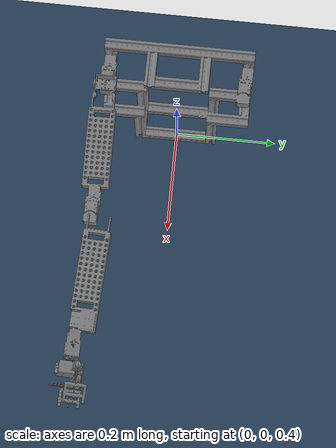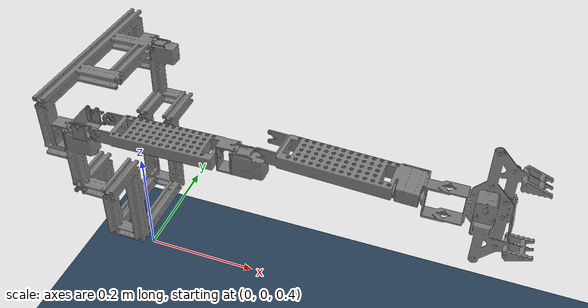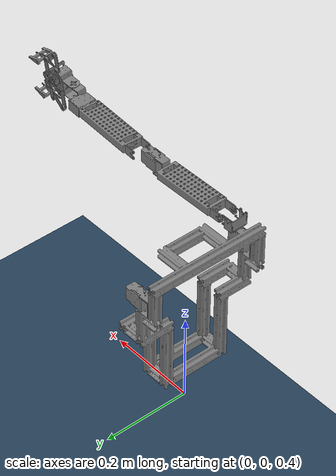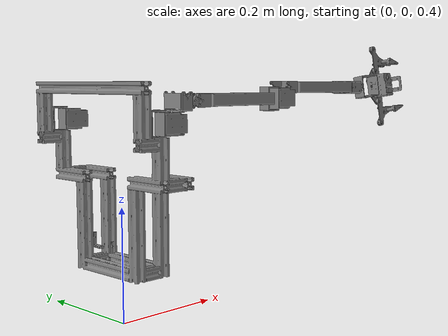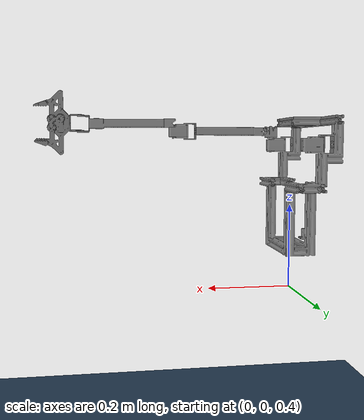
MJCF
<mujoco>
  <option gravity="0 0 -9.81" timestep="0.001" integrator="RK4" iterations="200"/>
  <default>
  <joint
      damping="10"
      armature="0.05"
      limited="true"/>

  <geom
      friction="1 0.01 0.001"
      condim="3"/>

  <motor
      ctrlrange="-1 1"
      ctrllimited="true"/>

</default>

  <asset>
    <!-- Meshes -->
    <mesh name="base_link_mesh" file="mark_1/meshes/base_link.STL"/>
    <mesh name="right_shoulder_mesh" file="mark_1/meshes/right_shoulder_link.STL"/>
    <mesh name="right_deltoid_mesh" file="mark_1/meshes/right_deltoid_link.STL"/>
    <mesh name="right_forearm_mesh" file="mark_1/meshes/right_forearm_link.STL"/>
    <mesh name="right_wrist_mesh" file="mark_1/meshes/right_wrist_link.STL"/>

    <!-- Standard MuJoCo blue checker -->
    <texture
        name="grid"
        type="2d"
        builtin="checker"
        width="300"
        height="300"
        rgb1="0.1 0.2 0.3"
        rgb2="0.2 0.3 0.4"/>

    <material
        name="floor_mat"
        texture="grid"
        texrepeat="8 8"
        reflectance="0.0"/>
  </asset>

  <worldbody>
    <!-- Floor -->
    <geom name="floor"
          type="plane"
          size="5 5 0.1"
          material="floor_mat"/>

    <!-- Lights (VALID MJCF) -->
    <light name="sun"
           pos="0 0 5"
           dir="0 0 -1"
           diffuse="1 1 1"
           specular="0.3 0.3 0.3"/>

    <light name="fill"
           pos="5 -5 3"
           dir="-1 1 -0.5"
           diffuse="0.4 0.4 0.4"
           specular="0 0 0"/>

    <!-- BASE -->
    <body name="base" pos="0 0 0.5">
      <geom type="mesh" mesh="base_link_mesh" mass="5"/>

      <!-- RIGHT SHOULDER -->
      <body name="right_shoulder"
            pos="0.00836954205747536 -0.133606477325328 0.26465">
        <joint name="right_shoulder_joint"
               type="hinge"
               axis="-0.0143182523264597 0.999897488570861 0"
               range="-1.57 1.57"
               damping="15"/>
        <geom type="mesh" mesh="right_shoulder_mesh" mass="0.8"/>

        <!-- RIGHT DELTOID -->
        <body name="right_deltoid"
            pos="0.0260319094907936 -0.0181291282492522 0.0157130544878568">
               <joint name="right_deltoid_joint"
                 type="hinge"
                 axis="-0.0143390356701151 0.999897190743154 0"
                 range="-1.2 1.2"
                 damping="80"
                 armature="0.40"/>
          <geom type="mesh" mesh="right_deltoid_mesh" mass="0.5"/>

          <!-- RIGHT FOREARM -->
            <body name="right_forearm"
              pos="0.23445123955499 0.0180119617798703 0.0197905658655673">
                     <joint name="right_forearm_joint"
                       type="hinge"
                       axis="0.0538274515179134 0.998550251846689 0"
                       range="-1.57 1.57"
                       damping="00"
                       armature="0.30"/>
            <geom type="mesh" mesh="right_forearm_mesh" mass="0.3"/>

            <!-- RIGHT WRIST (fixed joint) -->
            <body name="right_wrist"
                  pos="0.213139944643721 -0.00499437028651983 -0.00148091509216837">
              <geom type="mesh" mesh="right_wrist_mesh"/>
            </body>

          </body>
        </body>
      </body>
    </body>
  </worldbody>

  <actuator>
    <!-- Shoulder kept as position target; deltoid/forearm use torque (motor) actuators -->
     <motor joint="right_shoulder_joint" gear="50"/>
    <motor joint="right_deltoid_joint" gear="50" ctrlrange="-30 30"/>
    <motor joint="right_forearm_joint" gear="50" ctrlrange="-30 30"/>
  </actuator>
</mujoco>
